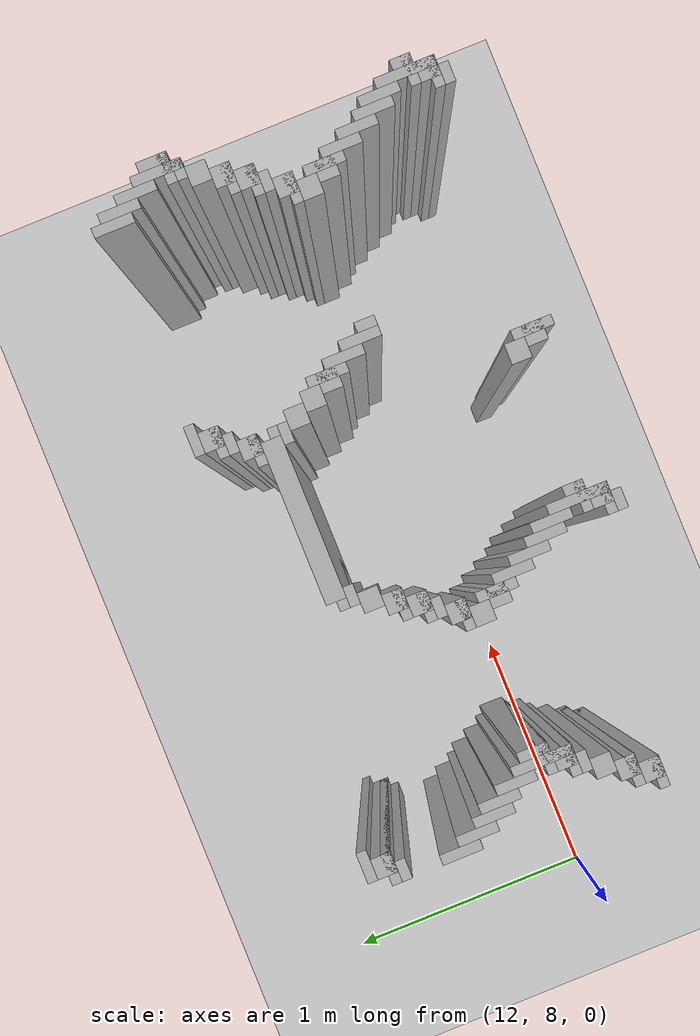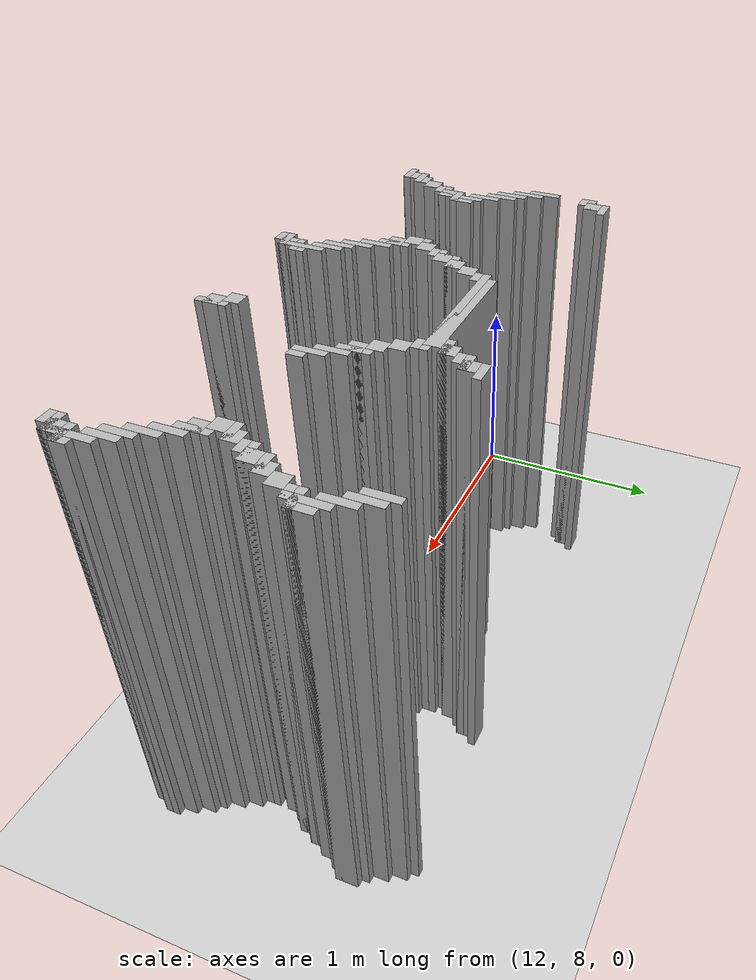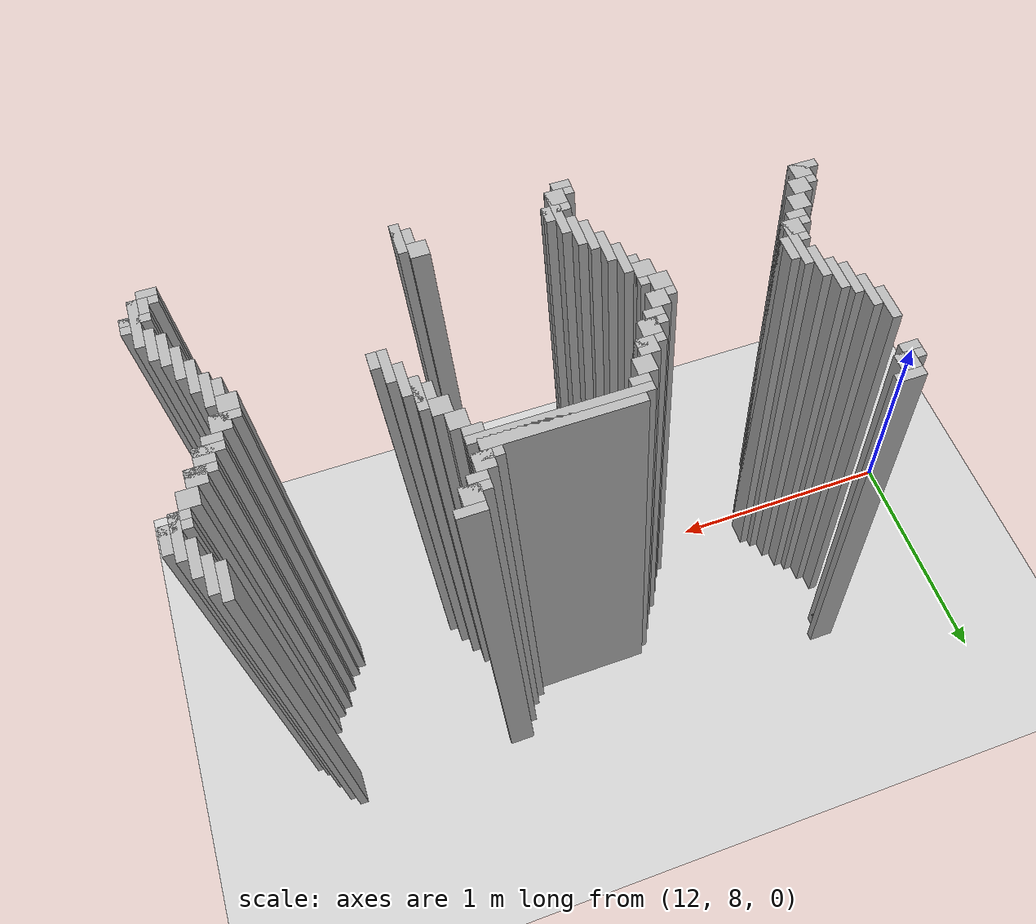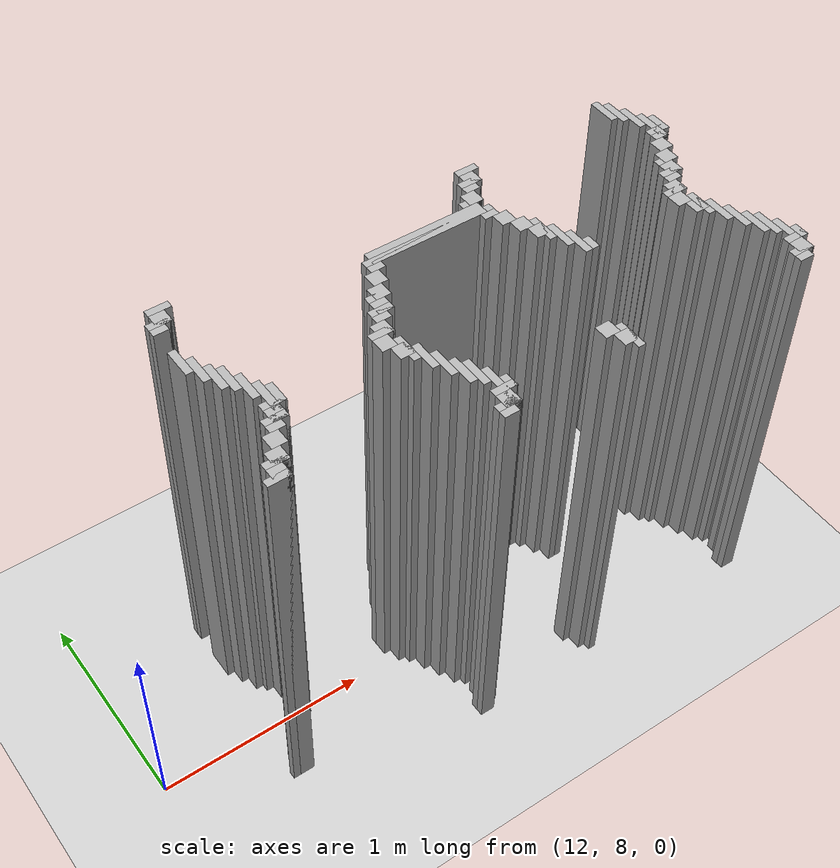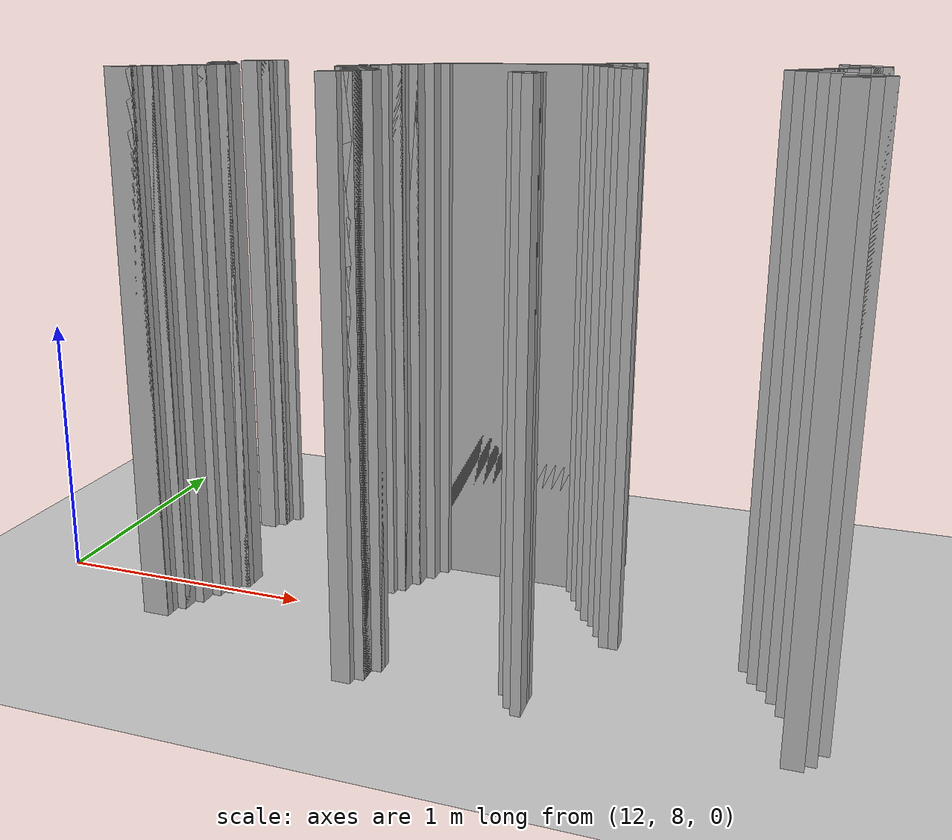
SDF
<sdf version="1.6">
 <world name="slam_world">
  <model name="ground_plane">
   <static>true</static>
   <link name="link">
    <collision name="collision">
     <geometry><plane><normal>0 0 1</normal><size>100 100</size></plane></geometry>
    </collision>
    <visual name="visual">
     <geometry><plane><normal>0 0 1</normal><size>100 100</size></plane></geometry>
     <material>
      <ambient>0.8 0.8 0.8 1</ambient>
      <diffuse>0.8 0.8 0.8 1</diffuse>
      <specular>0.8 0.8 0.8 1</specular>
     </material>
    </visual>
   </link>
  </model>
  <model name="wall_2935">
   <static>true</static>
   <pose>14.80858468677494 8.700696055684455 1.0 0 0 0</pose>
   <link name="link">
    <collision name="collision">
     <geometry><box><size>0.03480278422273782 0.13921113689095127 2.0</size></box></geometry>
    </collision>
    <visual name="visual">
     <geometry><box><size>0.03480278422273782 0.13921113689095127 2.0</size></box></geometry>
     <material><ambient>0.5 0.5 0.5 1</ambient><diffuse>0.7 0.7 0.7 1</diffuse></material>
    </visual>
   </link>
  </model>
  <model name="wall_2948">
   <static>true</static>
   <pose>12.616009280742459 8.718097447795824 1.0 0 0 0</pose>
   <link name="link">
    <collision name="collision">
     <geometry><box><size>0.10440835266821345 0.03480278422273782 2.0</size></box></geometry>
    </collision>
    <visual name="visual">
     <geometry><box><size>0.10440835266821345 0.03480278422273782 2.0</size></box></geometry>
     <material><ambient>0.5 0.5 0.5 1</ambient><diffuse>0.7 0.7 0.7 1</diffuse></material>
    </visual>
   </link>
  </model>
  <model name="wall_2949">
   <static>true</static>
   <pose>14.077726218097448 8.718097447795824 1.0 0 0 0</pose>
   <link name="link">
    <collision name="collision">
     <geometry><box><size>0.10440835266821345 0.03480278422273782 2.0</size></box></geometry>
    </collision>
    <visual name="visual">
     <geometry><box><size>0.10440835266821345 0.03480278422273782 2.0</size></box></geometry>
     <material><ambient>0.5 0.5 0.5 1</ambient><diffuse>0.7 0.7 0.7 1</diffuse></material>
    </visual>
   </link>
  </model>
  <model name="wall_2950">
   <static>true</static>
   <pose>14.84338747099768 8.665893271461716 1.0 0 0 0</pose>
   <link name="link">
    <collision name="collision">
     <geometry><box><size>0.03480278422273782 0.13921113689095127 2.0</size></box></geometry>
    </collision>
    <visual name="visual">
     <geometry><box><size>0.03480278422273782 0.13921113689095127 2.0</size></box></geometry>
     <material><ambient>0.5 0.5 0.5 1</ambient><diffuse>0.7 0.7 0.7 1</diffuse></material>
    </visual>
   </link>
  </model>
  <model name="wall_2959">
   <static>true</static>
   <pose>12.59860788863109 8.665893271461716 1.0 0 0 0</pose>
   <link name="link">
    <collision name="collision">
     <geometry><box><size>0.06960556844547564 0.06960556844547564 2.0</size></box></geometry>
    </collision>
    <visual name="visual">
     <geometry><box><size>0.06960556844547564 0.06960556844547564 2.0</size></box></geometry>
     <material><ambient>0.5 0.5 0.5 1</ambient><diffuse>0.7 0.7 0.7 1</diffuse></material>
    </visual>
   </link>
  </model>
  <model name="wall_2960">
   <static>true</static>
   <pose>14.06032482598608 8.665893271461716 1.0 0 0 0</pose>
   <link name="link">
    <collision name="collision">
     <geometry><box><size>0.06960556844547564 0.06960556844547564 2.0</size></box></geometry>
    </collision>
    <visual name="visual">
     <geometry><box><size>0.06960556844547564 0.06960556844547564 2.0</size></box></geometry>
     <material><ambient>0.5 0.5 0.5 1</ambient><diffuse>0.7 0.7 0.7 1</diffuse></material>
    </visual>
   </link>
  </model>
  <model name="wall_2973">
   <static>true</static>
   <pose>12.581206496519721 8.648491879350347 1.0 0 0 0</pose>
   <link name="link">
    <collision name="collision">
     <geometry><box><size>0.10440835266821345 0.03480278422273782 2.0</size></box></geometry>
    </collision>
    <visual name="visual">
     <geometry><box><size>0.10440835266821345 0.03480278422273782 2.0</size></box></geometry>
     <material><ambient>0.5 0.5 0.5 1</ambient><diffuse>0.7 0.7 0.7 1</diffuse></material>
    </visual>
   </link>
  </model>
  <model name="wall_2974">
   <static>true</static>
   <pose>14.042923433874709 8.648491879350347 1.0 0 0 0</pose>
   <link name="link">
    <collision name="collision">
     <geometry><box><size>0.10440835266821345 0.03480278422273782 2.0</size></box></geometry>
    </collision>
    <visual name="visual">
     <geometry><box><size>0.10440835266821345 0.03480278422273782 2.0</size></box></geometry>
     <material><ambient>0.5 0.5 0.5 1</ambient><diffuse>0.7 0.7 0.7 1</diffuse></material>
    </visual>
   </link>
  </model>
  <model name="wall_2975">
   <static>true</static>
   <pose>14.878190255220417 8.596287703016241 1.0 0 0 0</pose>
   <link name="link">
    <collision name="collision">
     <geometry><box><size>0.03480278422273782 0.13921113689095127 2.0</size></box></geometry>
    </collision>
    <visual name="visual">
     <geometry><box><size>0.03480278422273782 0.13921113689095127 2.0</size></box></geometry>
     <material><ambient>0.5 0.5 0.5 1</ambient><diffuse>0.7 0.7 0.7 1</diffuse></material>
    </visual>
   </link>
  </model>
  <model name="wall_2983">
   <static>true</static>
   <pose>12.563805104408353 8.61368909512761 1.0 0 0 0</pose>
   <link name="link">
    <collision name="collision">
     <geometry><box><size>0.06960556844547564 0.03480278422273782 2.0</size></box></geometry>
    </collision>
    <visual name="visual">
     <geometry><box><size>0.06960556844547564 0.03480278422273782 2.0</size></box></geometry>
     <material><ambient>0.5 0.5 0.5 1</ambient><diffuse>0.7 0.7 0.7 1</diffuse></material>
    </visual>
   </link>
  </model>
  <model name="wall_2984">
   <static>true</static>
   <pose>14.02552204176334 8.61368909512761 1.0 0 0 0</pose>
   <link name="link">
    <collision name="collision">
     <geometry><box><size>0.06960556844547564 0.03480278422273782 2.0</size></box></geometry>
    </collision>
    <visual name="visual">
     <geometry><box><size>0.06960556844547564 0.03480278422273782 2.0</size></box></geometry>
     <material><ambient>0.5 0.5 0.5 1</ambient><diffuse>0.7 0.7 0.7 1</diffuse></material>
    </visual>
   </link>
  </model>
  <model name="wall_2998">
   <static>true</static>
   <pose>13.990719257540603 8.561484918793504 1.0 0 0 0</pose>
   <link name="link">
    <collision name="collision">
     <geometry><box><size>0.06960556844547564 0.06960556844547564 2.0</size></box></geometry>
    </collision>
    <visual name="visual">
     <geometry><box><size>0.06960556844547564 0.06960556844547564 2.0</size></box></geometry>
     <material><ambient>0.5 0.5 0.5 1</ambient><diffuse>0.7 0.7 0.7 1</diffuse></material>
    </visual>
   </link>
  </model>
  <model name="wall_2999">
   <static>true</static>
   <pose>14.912993039443155 8.509280742459396 1.0 0 0 0</pose>
   <link name="link">
    <collision name="collision">
     <geometry><box><size>0.03480278422273782 0.17401392111368907 2.0</size></box></geometry>
    </collision>
    <visual name="visual">
     <geometry><box><size>0.03480278422273782 0.17401392111368907 2.0</size></box></geometry>
     <material><ambient>0.5 0.5 0.5 1</ambient><diffuse>0.7 0.7 0.7 1</diffuse></material>
    </visual>
   </link>
  </model>
  <model name="wall_3013">
   <static>true</static>
   <pose>13.973317865429234 8.544083526682135 1.0 0 0 0</pose>
   <link name="link">
    <collision name="collision">
     <geometry><box><size>0.10440835266821345 0.03480278422273782 2.0</size></box></geometry>
    </collision>
    <visual name="visual">
     <geometry><box><size>0.10440835266821345 0.03480278422273782 2.0</size></box></geometry>
     <material><ambient>0.5 0.5 0.5 1</ambient><diffuse>0.7 0.7 0.7 1</diffuse></material>
    </visual>
   </link>
  </model>
  <model name="wall_3014">
   <static>true</static>
   <pose>14.947795823665892 8.509280742459396 1.0 0 0 0</pose>
   <link name="link">
    <collision name="collision">
     <geometry><box><size>0.03480278422273782 0.10440835266821345 2.0</size></box></geometry>
    </collision>
    <visual name="visual">
     <geometry><box><size>0.03480278422273782 0.10440835266821345 2.0</size></box></geometry>
     <material><ambient>0.5 0.5 0.5 1</ambient><diffuse>0.7 0.7 0.7 1</diffuse></material>
    </visual>
   </link>
  </model>
  <model name="wall_3026">
   <static>true</static>
   <pose>13.7122969837587 8.491879350348027 1.0 0 0 0</pose>
   <link name="link">
    <collision name="collision">
     <geometry><box><size>0.5568445475638051 0.06960556844547564 2.0</size></box></geometry>
    </collision>
    <visual name="visual">
     <geometry><box><size>0.5568445475638051 0.06960556844547564 2.0</size></box></geometry>
     <material><ambient>0.5 0.5 0.5 1</ambient><diffuse>0.7 0.7 0.7 1</diffuse></material>
    </visual>
   </link>
  </model>
  <model name="wall_3039">
   <static>true</static>
   <pose>12.546403712296984 8.422273781902552 1.0 0 0 0</pose>
   <link name="link">
    <collision name="collision">
     <geometry><box><size>0.03480278422273782 0.13921113689095127 2.0</size></box></geometry>
    </collision>
    <visual name="visual">
     <geometry><box><size>0.03480278422273782 0.13921113689095127 2.0</size></box></geometry>
     <material><ambient>0.5 0.5 0.5 1</ambient><diffuse>0.7 0.7 0.7 1</diffuse></material>
    </visual>
   </link>
  </model>
  <model name="wall_3040">
   <static>true</static>
   <pose>13.7122969837587 8.474477958236658 1.0 0 0 0</pose>
   <link name="link">
    <collision name="collision">
     <geometry><box><size>0.6264501160092807 0.03480278422273782 2.0</size></box></geometry>
    </collision>
    <visual name="visual">
     <geometry><box><size>0.6264501160092807 0.03480278422273782 2.0</size></box></geometry>
     <material><ambient>0.5 0.5 0.5 1</ambient><diffuse>0.7 0.7 0.7 1</diffuse></material>
    </visual>
   </link>
  </model>
  <model name="wall_3041">
   <static>true</static>
   <pose>14.912993039443155 8.474477958236658 1.0 0 0 0</pose>
   <link name="link">
    <collision name="collision">
     <geometry><box><size>0.10440835266821345 0.03480278422273782 2.0</size></box></geometry>
    </collision>
    <visual name="visual">
     <geometry><box><size>0.10440835266821345 0.03480278422273782 2.0</size></box></geometry>
     <material><ambient>0.5 0.5 0.5 1</ambient><diffuse>0.7 0.7 0.7 1</diffuse></material>
    </visual>
   </link>
  </model>
  <model name="wall_3056">
   <static>true</static>
   <pose>13.433874709976797 8.43967517401392 1.0 0 0 0</pose>
   <link name="link">
    <collision name="collision">
     <geometry><box><size>0.06960556844547564 0.03480278422273782 2.0</size></box></geometry>
    </collision>
    <visual name="visual">
     <geometry><box><size>0.06960556844547564 0.03480278422273782 2.0</size></box></geometry>
     <material><ambient>0.5 0.5 0.5 1</ambient><diffuse>0.7 0.7 0.7 1</diffuse></material>
    </visual>
   </link>
  </model>
  <model name="wall_3057">
   <static>true</static>
   <pose>13.990719257540603 8.43967517401392 1.0 0 0 0</pose>
   <link name="link">
    <collision name="collision">
     <geometry><box><size>0.06960556844547564 0.03480278422273782 2.0</size></box></geometry>
    </collision>
    <visual name="visual">
     <geometry><box><size>0.06960556844547564 0.03480278422273782 2.0</size></box></geometry>
     <material><ambient>0.5 0.5 0.5 1</ambient><diffuse>0.7 0.7 0.7 1</diffuse></material>
    </visual>
   </link>
  </model>
  <model name="wall_3058">
   <static>true</static>
   <pose>14.895591647331786 8.43967517401392 1.0 0 0 0</pose>
   <link name="link">
    <collision name="collision">
     <geometry><box><size>0.06960556844547564 0.03480278422273782 2.0</size></box></geometry>
    </collision>
    <visual name="visual">
     <geometry><box><size>0.06960556844547564 0.03480278422273782 2.0</size></box></geometry>
     <material><ambient>0.5 0.5 0.5 1</ambient><diffuse>0.7 0.7 0.7 1</diffuse></material>
    </visual>
   </link>
  </model>
  <model name="wall_3072">
   <static>true</static>
   <pose>12.581206496519721 8.352668213457076 1.0 0 0 0</pose>
   <link name="link">
    <collision name="collision">
     <geometry><box><size>0.03480278422273782 0.13921113689095127 2.0</size></box></geometry>
    </collision>
    <visual name="visual">
     <geometry><box><size>0.03480278422273782 0.13921113689095127 2.0</size></box></geometry>
     <material><ambient>0.5 0.5 0.5 1</ambient><diffuse>0.7 0.7 0.7 1</diffuse></material>
    </visual>
   </link>
  </model>
  <model name="wall_3073">
   <static>true</static>
   <pose>13.39907192575406 8.387470997679815 1.0 0 0 0</pose>
   <link name="link">
    <collision name="collision">
     <geometry><box><size>0.06960556844547564 0.06960556844547564 2.0</size></box></geometry>
    </collision>
    <visual name="visual">
     <geometry><box><size>0.06960556844547564 0.06960556844547564 2.0</size></box></geometry>
     <material><ambient>0.5 0.5 0.5 1</ambient><diffuse>0.7 0.7 0.7 1</diffuse></material>
    </visual>
   </link>
  </model>
  <model name="wall_3074">
   <static>true</static>
   <pose>14.02552204176334 8.387470997679815 1.0 0 0 0</pose>
   <link name="link">
    <collision name="collision">
     <geometry><box><size>0.06960556844547564 0.06960556844547564 2.0</size></box></geometry>
    </collision>
    <visual name="visual">
     <geometry><box><size>0.06960556844547564 0.06960556844547564 2.0</size></box></geometry>
     <material><ambient>0.5 0.5 0.5 1</ambient><diffuse>0.7 0.7 0.7 1</diffuse></material>
    </visual>
   </link>
  </model>
  <model name="wall_3075">
   <static>true</static>
   <pose>14.860788863109049 8.387470997679815 1.0 0 0 0</pose>
   <link name="link">
    <collision name="collision">
     <geometry><box><size>0.06960556844547564 0.06960556844547564 2.0</size></box></geometry>
    </collision>
    <visual name="visual">
     <geometry><box><size>0.06960556844547564 0.06960556844547564 2.0</size></box></geometry>
     <material><ambient>0.5 0.5 0.5 1</ambient><diffuse>0.7 0.7 0.7 1</diffuse></material>
    </visual>
   </link>
  </model>
  <model name="wall_3089">
   <static>true</static>
   <pose>12.616009280742459 8.2830626450116 1.0 0 0 0</pose>
   <link name="link">
    <collision name="collision">
     <geometry><box><size>0.03480278422273782 0.13921113689095127 2.0</size></box></geometry>
    </collision>
    <visual name="visual">
     <geometry><box><size>0.03480278422273782 0.13921113689095127 2.0</size></box></geometry>
     <material><ambient>0.5 0.5 0.5 1</ambient><diffuse>0.7 0.7 0.7 1</diffuse></material>
    </visual>
   </link>
  </model>
  <model name="wall_3090">
   <static>true</static>
   <pose>13.364269141531322 8.317865429234338 1.0 0 0 0</pose>
   <link name="link">
    <collision name="collision">
     <geometry><box><size>0.06960556844547564 0.06960556844547564 2.0</size></box></geometry>
    </collision>
    <visual name="visual">
     <geometry><box><size>0.06960556844547564 0.06960556844547564 2.0</size></box></geometry>
     <material><ambient>0.5 0.5 0.5 1</ambient><diffuse>0.7 0.7 0.7 1</diffuse></material>
    </visual>
   </link>
  </model>
  <model name="wall_3091">
   <static>true</static>
   <pose>14.06032482598608 8.317865429234338 1.0 0 0 0</pose>
   <link name="link">
    <collision name="collision">
     <geometry><box><size>0.06960556844547564 0.06960556844547564 2.0</size></box></geometry>
    </collision>
    <visual name="visual">
     <geometry><box><size>0.06960556844547564 0.06960556844547564 2.0</size></box></geometry>
     <material><ambient>0.5 0.5 0.5 1</ambient><diffuse>0.7 0.7 0.7 1</diffuse></material>
    </visual>
   </link>
  </model>
  <model name="wall_3092">
   <static>true</static>
   <pose>14.825986078886311 8.317865429234338 1.0 0 0 0</pose>
   <link name="link">
    <collision name="collision">
     <geometry><box><size>0.06960556844547564 0.06960556844547564 2.0</size></box></geometry>
    </collision>
    <visual name="visual">
     <geometry><box><size>0.06960556844547564 0.06960556844547564 2.0</size></box></geometry>
     <material><ambient>0.5 0.5 0.5 1</ambient><diffuse>0.7 0.7 0.7 1</diffuse></material>
    </visual>
   </link>
  </model>
  <model name="wall_3106">
   <static>true</static>
   <pose>12.650812064965196 8.248259860788863 1.0 0 0 0</pose>
   <link name="link">
    <collision name="collision">
     <geometry><box><size>0.03480278422273782 0.13921113689095127 2.0</size></box></geometry>
    </collision>
    <visual name="visual">
     <geometry><box><size>0.03480278422273782 0.13921113689095127 2.0</size></box></geometry>
     <material><ambient>0.5 0.5 0.5 1</ambient><diffuse>0.7 0.7 0.7 1</diffuse></material>
    </visual>
   </link>
  </model>
  <model name="wall_3107">
   <static>true</static>
   <pose>13.346867749419953 8.30046403712297 1.0 0 0 0</pose>
   <link name="link">
    <collision name="collision">
     <geometry><box><size>0.10440835266821345 0.03480278422273782 2.0</size></box></geometry>
    </collision>
    <visual name="visual">
     <geometry><box><size>0.10440835266821345 0.03480278422273782 2.0</size></box></geometry>
     <material><ambient>0.5 0.5 0.5 1</ambient><diffuse>0.7 0.7 0.7 1</diffuse></material>
    </visual>
   </link>
  </model>
  <model name="wall_3108">
   <static>true</static>
   <pose>14.112529002320185 8.248259860788863 1.0 0 0 0</pose>
   <link name="link">
    <collision name="collision">
     <geometry><box><size>0.03480278422273782 0.13921113689095127 2.0</size></box></geometry>
    </collision>
    <visual name="visual">
     <geometry><box><size>0.03480278422273782 0.13921113689095127 2.0</size></box></geometry>
     <material><ambient>0.5 0.5 0.5 1</ambient><diffuse>0.7 0.7 0.7 1</diffuse></material>
    </visual>
   </link>
  </model>
  <model name="wall_3109">
   <static>true</static>
   <pose>14.80858468677494 8.30046403712297 1.0 0 0 0</pose>
   <link name="link">
    <collision name="collision">
     <geometry><box><size>0.10440835266821345 0.03480278422273782 2.0</size></box></geometry>
    </collision>
    <visual name="visual">
     <geometry><box><size>0.10440835266821345 0.03480278422273782 2.0</size></box></geometry>
     <material><ambient>0.5 0.5 0.5 1</ambient><diffuse>0.7 0.7 0.7 1</diffuse></material>
    </visual>
   </link>
  </model>
  <model name="wall_3120">
   <static>true</static>
   <pose>13.329466357308585 8.248259860788863 1.0 0 0 0</pose>
   <link name="link">
    <collision name="collision">
     <geometry><box><size>0.06960556844547564 0.06960556844547564 2.0</size></box></geometry>
    </collision>
    <visual name="visual">
     <geometry><box><size>0.06960556844547564 0.06960556844547564 2.0</size></box></geometry>
     <material><ambient>0.5 0.5 0.5 1</ambient><diffuse>0.7 0.7 0.7 1</diffuse></material>
    </visual>
   </link>
  </model>
  <model name="wall_3121">
   <static>true</static>
   <pose>14.095127610208817 8.248259860788863 1.0 0 0 0</pose>
   <link name="link">
    <collision name="collision">
     <geometry><box><size>0.06960556844547564 0.06960556844547564 2.0</size></box></geometry>
    </collision>
    <visual name="visual">
     <geometry><box><size>0.06960556844547564 0.06960556844547564 2.0</size></box></geometry>
     <material><ambient>0.5 0.5 0.5 1</ambient><diffuse>0.7 0.7 0.7 1</diffuse></material>
    </visual>
   </link>
  </model>
  <model name="wall_3122">
   <static>true</static>
   <pose>14.791183294663572 8.248259860788863 1.0 0 0 0</pose>
   <link name="link">
    <collision name="collision">
     <geometry><box><size>0.06960556844547564 0.06960556844547564 2.0</size></box></geometry>
    </collision>
    <visual name="visual">
     <geometry><box><size>0.06960556844547564 0.06960556844547564 2.0</size></box></geometry>
     <material><ambient>0.5 0.5 0.5 1</ambient><diffuse>0.7 0.7 0.7 1</diffuse></material>
    </visual>
   </link>
  </model>
  <model name="wall_3136">
   <static>true</static>
   <pose>12.685614849187935 8.178654292343387 1.0 0 0 0</pose>
   <link name="link">
    <collision name="collision">
     <geometry><box><size>0.03480278422273782 0.13921113689095127 2.0</size></box></geometry>
    </collision>
    <visual name="visual">
     <geometry><box><size>0.03480278422273782 0.13921113689095127 2.0</size></box></geometry>
     <material><ambient>0.5 0.5 0.5 1</ambient><diffuse>0.7 0.7 0.7 1</diffuse></material>
    </visual>
   </link>
  </model>
  <model name="wall_3137">
   <static>true</static>
   <pose>13.312064965197216 8.230858468677495 1.0 0 0 0</pose>
   <link name="link">
    <collision name="collision">
     <geometry><box><size>0.10440835266821345 0.03480278422273782 2.0</size></box></geometry>
    </collision>
    <visual name="visual">
     <geometry><box><size>0.10440835266821345 0.03480278422273782 2.0</size></box></geometry>
     <material><ambient>0.5 0.5 0.5 1</ambient><diffuse>0.7 0.7 0.7 1</diffuse></material>
    </visual>
   </link>
  </model>
  <model name="wall_3138">
   <static>true</static>
   <pose>14.147331786542923 8.178654292343387 1.0 0 0 0</pose>
   <link name="link">
    <collision name="collision">
     <geometry><box><size>0.03480278422273782 0.13921113689095127 2.0</size></box></geometry>
    </collision>
    <visual name="visual">
     <geometry><box><size>0.03480278422273782 0.13921113689095127 2.0</size></box></geometry>
     <material><ambient>0.5 0.5 0.5 1</ambient><diffuse>0.7 0.7 0.7 1</diffuse></material>
    </visual>
   </link>
  </model>
  <model name="wall_3139">
   <static>true</static>
   <pose>14.773781902552203 8.230858468677495 1.0 0 0 0</pose>
   <link name="link">
    <collision name="collision">
     <geometry><box><size>0.10440835266821345 0.03480278422273782 2.0</size></box></geometry>
    </collision>
    <visual name="visual">
     <geometry><box><size>0.10440835266821345 0.03480278422273782 2.0</size></box></geometry>
     <material><ambient>0.5 0.5 0.5 1</ambient><diffuse>0.7 0.7 0.7 1</diffuse></material>
    </visual>
   </link>
  </model>
  <model name="wall_3147">
   <static>true</static>
   <pose>13.294663573085847 8.196055684454755 1.0 0 0 0</pose>
   <link name="link">
    <collision name="collision">
     <geometry><box><size>0.06960556844547564 0.03480278422273782 2.0</size></box></geometry>
    </collision>
    <visual name="visual">
     <geometry><box><size>0.06960556844547564 0.03480278422273782 2.0</size></box></geometry>
     <material><ambient>0.5 0.5 0.5 1</ambient><diffuse>0.7 0.7 0.7 1</diffuse></material>
    </visual>
   </link>
  </model>
  <model name="wall_3148">
   <static>true</static>
   <pose>14.756380510440835 8.196055684454755 1.0 0 0 0</pose>
   <link name="link">
    <collision name="collision">
     <geometry><box><size>0.06960556844547564 0.03480278422273782 2.0</size></box></geometry>
    </collision>
    <visual name="visual">
     <geometry><box><size>0.06960556844547564 0.03480278422273782 2.0</size></box></geometry>
     <material><ambient>0.5 0.5 0.5 1</ambient><diffuse>0.7 0.7 0.7 1</diffuse></material>
    </visual>
   </link>
  </model>
  <model name="wall_3162">
   <static>true</static>
   <pose>12.720417633410673 8.074245939675174 1.0 0 0 0</pose>
   <link name="link">
    <collision name="collision">
     <geometry><box><size>0.03480278422273782 0.2088167053364269 2.0</size></box></geometry>
    </collision>
    <visual name="visual">
     <geometry><box><size>0.03480278422273782 0.2088167053364269 2.0</size></box></geometry>
     <material><ambient>0.5 0.5 0.5 1</ambient><diffuse>0.7 0.7 0.7 1</diffuse></material>
    </visual>
   </link>
  </model>
  <model name="wall_3163">
   <static>true</static>
   <pose>13.259860788863108 8.14385150812065 1.0 0 0 0</pose>
   <link name="link">
    <collision name="collision">
     <geometry><box><size>0.06960556844547564 0.06960556844547564 2.0</size></box></geometry>
    </collision>
    <visual name="visual">
     <geometry><box><size>0.06960556844547564 0.06960556844547564 2.0</size></box></geometry>
     <material><ambient>0.5 0.5 0.5 1</ambient><diffuse>0.7 0.7 0.7 1</diffuse></material>
    </visual>
   </link>
  </model>
  <model name="wall_3164">
   <static>true</static>
   <pose>14.18213457076566 8.109048723897912 1.0 0 0 0</pose>
   <link name="link">
    <collision name="collision">
     <geometry><box><size>0.03480278422273782 0.13921113689095127 2.0</size></box></geometry>
    </collision>
    <visual name="visual">
     <geometry><box><size>0.03480278422273782 0.13921113689095127 2.0</size></box></geometry>
     <material><ambient>0.5 0.5 0.5 1</ambient><diffuse>0.7 0.7 0.7 1</diffuse></material>
    </visual>
   </link>
  </model>
  <model name="wall_3165">
   <static>true</static>
   <pose>14.721577726218097 8.14385150812065 1.0 0 0 0</pose>
   <link name="link">
    <collision name="collision">
     <geometry><box><size>0.06960556844547564 0.06960556844547564 2.0</size></box></geometry>
    </collision>
    <visual name="visual">
     <geometry><box><size>0.06960556844547564 0.06960556844547564 2.0</size></box></geometry>
     <material><ambient>0.5 0.5 0.5 1</ambient><diffuse>0.7 0.7 0.7 1</diffuse></material>
    </visual>
   </link>
  </model>
  <model name="wall_3175">
   <static>true</static>
   <pose>12.75522041763341 8.091647331786543 1.0 0 0 0</pose>
   <link name="link">
    <collision name="collision">
     <geometry><box><size>0.03480278422273782 0.10440835266821345 2.0</size></box></geometry>
    </collision>
    <visual name="visual">
     <geometry><box><size>0.03480278422273782 0.10440835266821345 2.0</size></box></geometry>
     <material><ambient>0.5 0.5 0.5 1</ambient><diffuse>0.7 0.7 0.7 1</diffuse></material>
    </visual>
   </link>
  </model>
  <model name="wall_3176">
   <static>true</static>
   <pose>13.24245939675174 8.12645011600928 1.0 0 0 0</pose>
   <link name="link">
    <collision name="collision">
     <geometry><box><size>0.10440835266821345 0.03480278422273782 2.0</size></box></geometry>
    </collision>
    <visual name="visual">
     <geometry><box><size>0.10440835266821345 0.03480278422273782 2.0</size></box></geometry>
     <material><ambient>0.5 0.5 0.5 1</ambient><diffuse>0.7 0.7 0.7 1</diffuse></material>
    </visual>
   </link>
  </model>
  <model name="wall_3177">
   <static>true</static>
   <pose>14.704176334106728 8.12645011600928 1.0 0 0 0</pose>
   <link name="link">
    <collision name="collision">
     <geometry><box><size>0.10440835266821345 0.03480278422273782 2.0</size></box></geometry>
    </collision>
    <visual name="visual">
     <geometry><box><size>0.10440835266821345 0.03480278422273782 2.0</size></box></geometry>
     <material><ambient>0.5 0.5 0.5 1</ambient><diffuse>0.7 0.7 0.7 1</diffuse></material>
    </visual>
   </link>
  </model>
  <model name="wall_3189">
   <static>true</static>
   <pose>13.22505800464037 8.074245939675174 1.0 0 0 0</pose>
   <link name="link">
    <collision name="collision">
     <geometry><box><size>0.06960556844547564 0.06960556844547564 2.0</size></box></geometry>
    </collision>
    <visual name="visual">
     <geometry><box><size>0.06960556844547564 0.06960556844547564 2.0</size></box></geometry>
     <material><ambient>0.5 0.5 0.5 1</ambient><diffuse>0.7 0.7 0.7 1</diffuse></material>
    </visual>
   </link>
  </model>
  <model name="wall_3190">
   <static>true</static>
   <pose>14.2169373549884 8.074245939675174 1.0 0 0 0</pose>
   <link name="link">
    <collision name="collision">
     <geometry><box><size>0.03480278422273782 0.06960556844547564 2.0</size></box></geometry>
    </collision>
    <visual name="visual">
     <geometry><box><size>0.03480278422273782 0.06960556844547564 2.0</size></box></geometry>
     <material><ambient>0.5 0.5 0.5 1</ambient><diffuse>0.7 0.7 0.7 1</diffuse></material>
    </visual>
   </link>
  </model>
  <model name="wall_3191">
   <static>true</static>
   <pose>14.68677494199536 8.074245939675174 1.0 0 0 0</pose>
   <link name="link">
    <collision name="collision">
     <geometry><box><size>0.06960556844547564 0.06960556844547564 2.0</size></box></geometry>
    </collision>
    <visual name="visual">
     <geometry><box><size>0.06960556844547564 0.06960556844547564 2.0</size></box></geometry>
     <material><ambient>0.5 0.5 0.5 1</ambient><diffuse>0.7 0.7 0.7 1</diffuse></material>
    </visual>
   </link>
  </model>
  <model name="wall_3202">
   <static>true</static>
   <pose>12.720417633410673 8.056844547563804 1.0 0 0 0</pose>
   <link name="link">
    <collision name="collision">
     <geometry><box><size>0.10440835266821345 0.03480278422273782 2.0</size></box></geometry>
    </collision>
    <visual name="visual">
     <geometry><box><size>0.10440835266821345 0.03480278422273782 2.0</size></box></geometry>
     <material><ambient>0.5 0.5 0.5 1</ambient><diffuse>0.7 0.7 0.7 1</diffuse></material>
    </visual>
   </link>
  </model>
  <model name="wall_3203">
   <static>true</static>
   <pose>13.277262180974477 8.004640371229698 1.0 0 0 0</pose>
   <link name="link">
    <collision name="collision">
     <geometry><box><size>0.03480278422273782 0.13921113689095127 2.0</size></box></geometry>
    </collision>
    <visual name="visual">
     <geometry><box><size>0.03480278422273782 0.13921113689095127 2.0</size></box></geometry>
     <material><ambient>0.5 0.5 0.5 1</ambient><diffuse>0.7 0.7 0.7 1</diffuse></material>
    </visual>
   </link>
  </model>
  <model name="wall_3204">
   <static>true</static>
   <pose>14.738979118329466 8.004640371229698 1.0 0 0 0</pose>
   <link name="link">
    <collision name="collision">
     <geometry><box><size>0.03480278422273782 0.13921113689095127 2.0</size></box></geometry>
    </collision>
    <visual name="visual">
     <geometry><box><size>0.03480278422273782 0.13921113689095127 2.0</size></box></geometry>
     <material><ambient>0.5 0.5 0.5 1</ambient><diffuse>0.7 0.7 0.7 1</diffuse></material>
    </visual>
   </link>
  </model>
  <model name="wall_3215">
   <static>true</static>
   <pose>12.703016241299304 8.004640371229698 1.0 0 0 0</pose>
   <link name="link">
    <collision name="collision">
     <geometry><box><size>0.06960556844547564 0.06960556844547564 2.0</size></box></geometry>
    </collision>
    <visual name="visual">
     <geometry><box><size>0.06960556844547564 0.06960556844547564 2.0</size></box></geometry>
     <material><ambient>0.5 0.5 0.5 1</ambient><diffuse>0.7 0.7 0.7 1</diffuse></material>
    </visual>
   </link>
  </model>
  <model name="wall_3216">
   <static>true</static>
   <pose>13.259860788863108 8.004640371229698 1.0 0 0 0</pose>
   <link name="link">
    <collision name="collision">
     <geometry><box><size>0.06960556844547564 0.06960556844547564 2.0</size></box></geometry>
    </collision>
    <visual name="visual">
     <geometry><box><size>0.06960556844547564 0.06960556844547564 2.0</size></box></geometry>
     <material><ambient>0.5 0.5 0.5 1</ambient><diffuse>0.7 0.7 0.7 1</diffuse></material>
    </visual>
   </link>
  </model>
  <model name="wall_3217">
   <static>true</static>
   <pose>14.721577726218097 8.004640371229698 1.0 0 0 0</pose>
   <link name="link">
    <collision name="collision">
     <geometry><box><size>0.06960556844547564 0.06960556844547564 2.0</size></box></geometry>
    </collision>
    <visual name="visual">
     <geometry><box><size>0.06960556844547564 0.06960556844547564 2.0</size></box></geometry>
     <material><ambient>0.5 0.5 0.5 1</ambient><diffuse>0.7 0.7 0.7 1</diffuse></material>
    </visual>
   </link>
  </model>
  <model name="wall_3228">
   <static>true</static>
   <pose>12.685614849187935 7.987238979118329 1.0 0 0 0</pose>
   <link name="link">
    <collision name="collision">
     <geometry><box><size>0.10440835266821345 0.03480278422273782 2.0</size></box></geometry>
    </collision>
    <visual name="visual">
     <geometry><box><size>0.10440835266821345 0.03480278422273782 2.0</size></box></geometry>
     <material><ambient>0.5 0.5 0.5 1</ambient><diffuse>0.7 0.7 0.7 1</diffuse></material>
    </visual>
   </link>
  </model>
  <model name="wall_3229">
   <static>true</static>
   <pose>13.312064965197216 7.935034802784222 1.0 0 0 0</pose>
   <link name="link">
    <collision name="collision">
     <geometry><box><size>0.03480278422273782 0.13921113689095127 2.0</size></box></geometry>
    </collision>
    <visual name="visual">
     <geometry><box><size>0.03480278422273782 0.13921113689095127 2.0</size></box></geometry>
     <material><ambient>0.5 0.5 0.5 1</ambient><diffuse>0.7 0.7 0.7 1</diffuse></material>
    </visual>
   </link>
  </model>
  <model name="wall_3230">
   <static>true</static>
   <pose>14.773781902552203 7.935034802784222 1.0 0 0 0</pose>
   <link name="link">
    <collision name="collision">
     <geometry><box><size>0.03480278422273782 0.13921113689095127 2.0</size></box></geometry>
    </collision>
    <visual name="visual">
     <geometry><box><size>0.03480278422273782 0.13921113689095127 2.0</size></box></geometry>
     <material><ambient>0.5 0.5 0.5 1</ambient><diffuse>0.7 0.7 0.7 1</diffuse></material>
    </visual>
   </link>
  </model>
  <model name="wall_3235">
   <static>true</static>
   <pose>12.668213457076565 7.952436194895592 1.0 0 0 0</pose>
   <link name="link">
    <collision name="collision">
     <geometry><box><size>0.06960556844547564 0.03480278422273782 2.0</size></box></geometry>
    </collision>
    <visual name="visual">
     <geometry><box><size>0.06960556844547564 0.03480278422273782 2.0</size></box></geometry>
     <material><ambient>0.5 0.5 0.5 1</ambient><diffuse>0.7 0.7 0.7 1</diffuse></material>
    </visual>
   </link>
  </model>
  <model name="wall_3246">
   <static>true</static>
   <pose>12.633410672853827 7.900232018561485 1.0 0 0 0</pose>
   <link name="link">
    <collision name="collision">
     <geometry><box><size>0.06960556844547564 0.06960556844547564 2.0</size></box></geometry>
    </collision>
    <visual name="visual">
     <geometry><box><size>0.06960556844547564 0.06960556844547564 2.0</size></box></geometry>
     <material><ambient>0.5 0.5 0.5 1</ambient><diffuse>0.7 0.7 0.7 1</diffuse></material>
    </visual>
   </link>
  </model>
  <model name="wall_3247">
   <static>true</static>
   <pose>13.346867749419953 7.865429234338746 1.0 0 0 0</pose>
   <link name="link">
    <collision name="collision">
     <geometry><box><size>0.03480278422273782 0.13921113689095127 2.0</size></box></geometry>
    </collision>
    <visual name="visual">
     <geometry><box><size>0.03480278422273782 0.13921113689095127 2.0</size></box></geometry>
     <material><ambient>0.5 0.5 0.5 1</ambient><diffuse>0.7 0.7 0.7 1</diffuse></material>
    </visual>
   </link>
  </model>
  <model name="wall_3248">
   <static>true</static>
   <pose>14.80858468677494 7.865429234338746 1.0 0 0 0</pose>
   <link name="link">
    <collision name="collision">
     <geometry><box><size>0.03480278422273782 0.13921113689095127 2.0</size></box></geometry>
    </collision>
    <visual name="visual">
     <geometry><box><size>0.03480278422273782 0.13921113689095127 2.0</size></box></geometry>
     <material><ambient>0.5 0.5 0.5 1</ambient><diffuse>0.7 0.7 0.7 1</diffuse></material>
    </visual>
   </link>
  </model>
  <model name="wall_3259">
   <static>true</static>
   <pose>12.59860788863109 7.830626450116009 1.0 0 0 0</pose>
   <link name="link">
    <collision name="collision">
     <geometry><box><size>0.06960556844547564 0.06960556844547564 2.0</size></box></geometry>
    </collision>
    <visual name="visual">
     <geometry><box><size>0.06960556844547564 0.06960556844547564 2.0</size></box></geometry>
     <material><ambient>0.5 0.5 0.5 1</ambient><diffuse>0.7 0.7 0.7 1</diffuse></material>
    </visual>
   </link>
  </model>
  <model name="wall_3260">
   <static>true</static>
   <pose>13.38167053364269 7.795823665893272 1.0 0 0 0</pose>
   <link name="link">
    <collision name="collision">
     <geometry><box><size>0.03480278422273782 0.13921113689095127 2.0</size></box></geometry>
    </collision>
    <visual name="visual">
     <geometry><box><size>0.03480278422273782 0.13921113689095127 2.0</size></box></geometry>
     <material><ambient>0.5 0.5 0.5 1</ambient><diffuse>0.7 0.7 0.7 1</diffuse></material>
    </visual>
   </link>
  </model>
  <model name="wall_3261">
   <static>true</static>
   <pose>14.84338747099768 7.795823665893272 1.0 0 0 0</pose>
   <link name="link">
    <collision name="collision">
     <geometry><box><size>0.03480278422273782 0.13921113689095127 2.0</size></box></geometry>
    </collision>
    <visual name="visual">
     <geometry><box><size>0.03480278422273782 0.13921113689095127 2.0</size></box></geometry>
     <material><ambient>0.5 0.5 0.5 1</ambient><diffuse>0.7 0.7 0.7 1</diffuse></material>
    </visual>
   </link>
  </model>
  <model name="wall_3272">
   <static>true</static>
   <pose>12.581206496519721 7.81322505800464 1.0 0 0 0</pose>
   <link name="link">
    <collision name="collision">
     <geometry><box><size>0.10440835266821345 0.03480278422273782 2.0</size></box></geometry>
    </collision>
    <visual name="visual">
     <geometry><box><size>0.10440835266821345 0.03480278422273782 2.0</size></box></geometry>
     <material><ambient>0.5 0.5 0.5 1</ambient><diffuse>0.7 0.7 0.7 1</diffuse></material>
    </visual>
   </link>
  </model>
  <model name="wall_3273">
   <static>true</static>
   <pose>13.416473317865428 7.761020881670533 1.0 0 0 0</pose>
   <link name="link">
    <collision name="collision">
     <geometry><box><size>0.03480278422273782 0.13921113689095127 2.0</size></box></geometry>
    </collision>
    <visual name="visual">
     <geometry><box><size>0.03480278422273782 0.13921113689095127 2.0</size></box></geometry>
     <material><ambient>0.5 0.5 0.5 1</ambient><diffuse>0.7 0.7 0.7 1</diffuse></material>
    </visual>
   </link>
  </model>
  <model name="wall_3274">
   <static>true</static>
   <pose>14.878190255220417 7.761020881670533 1.0 0 0 0</pose>
   <link name="link">
    <collision name="collision">
     <geometry><box><size>0.03480278422273782 0.13921113689095127 2.0</size></box></geometry>
    </collision>
    <visual name="visual">
     <geometry><box><size>0.03480278422273782 0.13921113689095127 2.0</size></box></geometry>
     <material><ambient>0.5 0.5 0.5 1</ambient><diffuse>0.7 0.7 0.7 1</diffuse></material>
    </visual>
   </link>
  </model>
  <model name="wall_3279">
   <static>true</static>
   <pose>12.563805104408353 7.761020881670533 1.0 0 0 0</pose>
   <link name="link">
    <collision name="collision">
     <geometry><box><size>0.06960556844547564 0.06960556844547564 2.0</size></box></geometry>
    </collision>
    <visual name="visual">
     <geometry><box><size>0.06960556844547564 0.06960556844547564 2.0</size></box></geometry>
     <material><ambient>0.5 0.5 0.5 1</ambient><diffuse>0.7 0.7 0.7 1</diffuse></material>
    </visual>
   </link>
  </model>
  <model name="wall_3290">
   <static>true</static>
   <pose>12.546403712296984 7.743619489559165 1.0 0 0 0</pose>
   <link name="link">
    <collision name="collision">
     <geometry><box><size>0.10440835266821345 0.03480278422273782 2.0</size></box></geometry>
    </collision>
    <visual name="visual">
     <geometry><box><size>0.10440835266821345 0.03480278422273782 2.0</size></box></geometry>
     <material><ambient>0.5 0.5 0.5 1</ambient><diffuse>0.7 0.7 0.7 1</diffuse></material>
    </visual>
   </link>
  </model>
  <model name="wall_3291">
   <static>true</static>
   <pose>13.451276102088167 7.65661252900232 1.0 0 0 0</pose>
   <link name="link">
    <collision name="collision">
     <geometry><box><size>0.03480278422273782 0.2088167053364269 2.0</size></box></geometry>
    </collision>
    <visual name="visual">
     <geometry><box><size>0.03480278422273782 0.2088167053364269 2.0</size></box></geometry>
     <material><ambient>0.5 0.5 0.5 1</ambient><diffuse>0.7 0.7 0.7 1</diffuse></material>
    </visual>
   </link>
  </model>
  <model name="wall_3292">
   <static>true</static>
   <pose>14.912993039443155 7.65661252900232 1.0 0 0 0</pose>
   <link name="link">
    <collision name="collision">
     <geometry><box><size>0.03480278422273782 0.2088167053364269 2.0</size></box></geometry>
    </collision>
    <visual name="visual">
     <geometry><box><size>0.03480278422273782 0.2088167053364269 2.0</size></box></geometry>
     <material><ambient>0.5 0.5 0.5 1</ambient><diffuse>0.7 0.7 0.7 1</diffuse></material>
    </visual>
   </link>
  </model>
  <model name="wall_3309">
   <static>true</static>
   <pose>13.486078886310905 7.65661252900232 1.0 0 0 0</pose>
   <link name="link">
    <collision name="collision">
     <geometry><box><size>0.03480278422273782 0.06960556844547564 2.0</size></box></geometry>
    </collision>
    <visual name="visual">
     <geometry><box><size>0.03480278422273782 0.06960556844547564 2.0</size></box></geometry>
     <material><ambient>0.5 0.5 0.5 1</ambient><diffuse>0.7 0.7 0.7 1</diffuse></material>
    </visual>
   </link>
  </model>
  <model name="wall_3310">
   <static>true</static>
   <pose>13.955916473317865 7.65661252900232 1.0 0 0 0</pose>
   <link name="link">
    <collision name="collision">
     <geometry><box><size>0.06960556844547564 0.06960556844547564 2.0</size></box></geometry>
    </collision>
    <visual name="visual">
     <geometry><box><size>0.06960556844547564 0.06960556844547564 2.0</size></box></geometry>
     <material><ambient>0.5 0.5 0.5 1</ambient><diffuse>0.7 0.7 0.7 1</diffuse></material>
    </visual>
   </link>
  </model>
  <model name="wall_3311">
   <static>true</static>
   <pose>14.947795823665892 7.65661252900232 1.0 0 0 0</pose>
   <link name="link">
    <collision name="collision">
     <geometry><box><size>0.03480278422273782 0.06960556844547564 2.0</size></box></geometry>
    </collision>
    <visual name="visual">
     <geometry><box><size>0.03480278422273782 0.06960556844547564 2.0</size></box></geometry>
     <material><ambient>0.5 0.5 0.5 1</ambient><diffuse>0.7 0.7 0.7 1</diffuse></material>
    </visual>
   </link>
  </model>
  <model name="wall_3321">
   <static>true</static>
   <pose>13.451276102088167 7.6392111368909505 1.0 0 0 0</pose>
   <link name="link">
    <collision name="collision">
     <geometry><box><size>0.10440835266821345 0.03480278422273782 2.0</size></box></geometry>
    </collision>
    <visual name="visual">
     <geometry><box><size>0.10440835266821345 0.03480278422273782 2.0</size></box></geometry>
     <material><ambient>0.5 0.5 0.5 1</ambient><diffuse>0.7 0.7 0.7 1</diffuse></material>
    </visual>
   </link>
  </model>
  <model name="wall_3322">
   <static>true</static>
   <pose>14.008120649651971 7.587006960556844 1.0 0 0 0</pose>
   <link name="link">
    <collision name="collision">
     <geometry><box><size>0.03480278422273782 0.13921113689095127 2.0</size></box></geometry>
    </collision>
    <visual name="visual">
     <geometry><box><size>0.03480278422273782 0.13921113689095127 2.0</size></box></geometry>
     <material><ambient>0.5 0.5 0.5 1</ambient><diffuse>0.7 0.7 0.7 1</diffuse></material>
    </visual>
   </link>
  </model>
  <model name="wall_3323">
   <static>true</static>
   <pose>14.912993039443155 7.6392111368909505 1.0 0 0 0</pose>
   <link name="link">
    <collision name="collision">
     <geometry><box><size>0.10440835266821345 0.03480278422273782 2.0</size></box></geometry>
    </collision>
    <visual name="visual">
     <geometry><box><size>0.10440835266821345 0.03480278422273782 2.0</size></box></geometry>
     <material><ambient>0.5 0.5 0.5 1</ambient><diffuse>0.7 0.7 0.7 1</diffuse></material>
    </visual>
   </link>
  </model>
  <model name="wall_3336">
   <static>true</static>
   <pose>13.433874709976797 7.587006960556844 1.0 0 0 0</pose>
   <link name="link">
    <collision name="collision">
     <geometry><box><size>0.06960556844547564 0.06960556844547564 2.0</size></box></geometry>
    </collision>
    <visual name="visual">
     <geometry><box><size>0.06960556844547564 0.06960556844547564 2.0</size></box></geometry>
     <material><ambient>0.5 0.5 0.5 1</ambient><diffuse>0.7 0.7 0.7 1</diffuse></material>
    </visual>
   </link>
  </model>
  <model name="wall_3337">
   <static>true</static>
   <pose>13.990719257540603 7.587006960556844 1.0 0 0 0</pose>
   <link name="link">
    <collision name="collision">
     <geometry><box><size>0.06960556844547564 0.06960556844547564 2.0</size></box></geometry>
    </collision>
    <visual name="visual">
     <geometry><box><size>0.06960556844547564 0.06960556844547564 2.0</size></box></geometry>
     <material><ambient>0.5 0.5 0.5 1</ambient><diffuse>0.7 0.7 0.7 1</diffuse></material>
    </visual>
   </link>
  </model>
  <model name="wall_3338">
   <static>true</static>
   <pose>14.895591647331786 7.587006960556844 1.0 0 0 0</pose>
   <link name="link">
    <collision name="collision">
     <geometry><box><size>0.06960556844547564 0.06960556844547564 2.0</size></box></geometry>
    </collision>
    <visual name="visual">
     <geometry><box><size>0.06960556844547564 0.06960556844547564 2.0</size></box></geometry>
     <material><ambient>0.5 0.5 0.5 1</ambient><diffuse>0.7 0.7 0.7 1</diffuse></material>
    </visual>
   </link>
  </model>
  <model name="wall_3351">
   <static>true</static>
   <pose>13.416473317865428 7.569605568445476 1.0 0 0 0</pose>
   <link name="link">
    <collision name="collision">
     <geometry><box><size>0.10440835266821345 0.03480278422273782 2.0</size></box></geometry>
    </collision>
    <visual name="visual">
     <geometry><box><size>0.10440835266821345 0.03480278422273782 2.0</size></box></geometry>
     <material><ambient>0.5 0.5 0.5 1</ambient><diffuse>0.7 0.7 0.7 1</diffuse></material>
    </visual>
   </link>
  </model>
  <model name="wall_3353">
   <static>true</static>
   <pose>14.878190255220417 7.569605568445476 1.0 0 0 0</pose>
   <link name="link">
    <collision name="collision">
     <geometry><box><size>0.10440835266821345 0.03480278422273782 2.0</size></box></geometry>
    </collision>
    <visual name="visual">
     <geometry><box><size>0.10440835266821345 0.03480278422273782 2.0</size></box></geometry>
     <material><ambient>0.5 0.5 0.5 1</ambient><diffuse>0.7 0.7 0.7 1</diffuse></material>
    </visual>
   </link>
  </model>
  <model name="wall_3362">
   <static>true</static>
   <pose>13.39907192575406 7.534802784222737 1.0 0 0 0</pose>
   <link name="link">
    <collision name="collision">
     <geometry><box><size>0.06960556844547564 0.03480278422273782 2.0</size></box></geometry>
    </collision>
    <visual name="visual">
     <geometry><box><size>0.06960556844547564 0.03480278422273782 2.0</size></box></geometry>
     <material><ambient>0.5 0.5 0.5 1</ambient><diffuse>0.7 0.7 0.7 1</diffuse></material>
    </visual>
   </link>
  </model>
  <model name="wall_3363">
   <static>true</static>
   <pose>14.860788863109049 7.534802784222737 1.0 0 0 0</pose>
   <link name="link">
    <collision name="collision">
     <geometry><box><size>0.06960556844547564 0.03480278422273782 2.0</size></box></geometry>
    </collision>
    <visual name="visual">
     <geometry><box><size>0.06960556844547564 0.03480278422273782 2.0</size></box></geometry>
     <material><ambient>0.5 0.5 0.5 1</ambient><diffuse>0.7 0.7 0.7 1</diffuse></material>
    </visual>
   </link>
  </model>
 </world>
</sdf>
